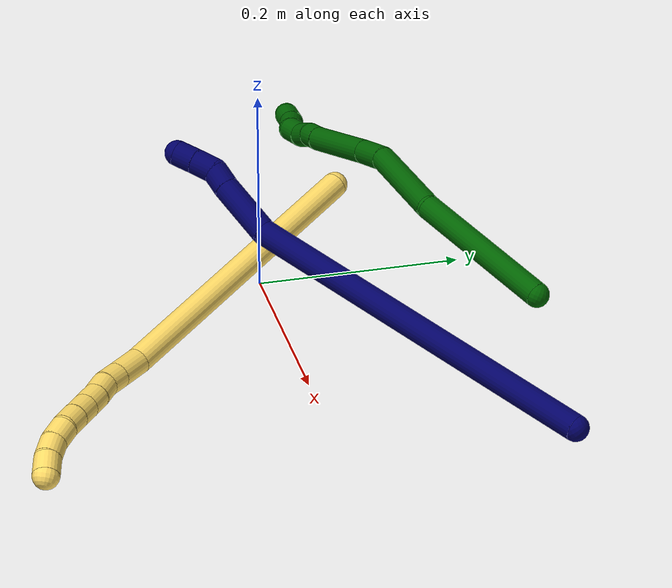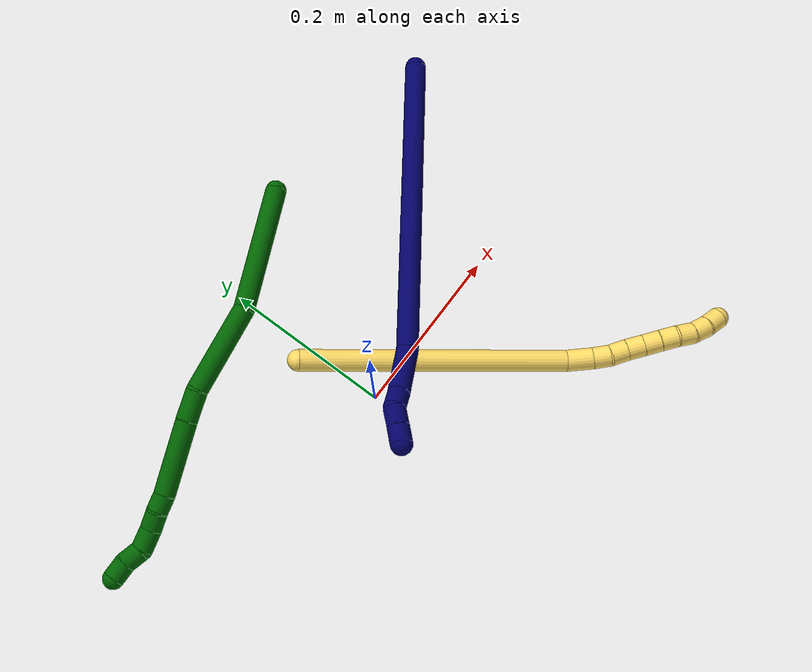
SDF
<sdf version="1.7">
 <world name="default">
  <model name="photoneo_s_sensor">
   <static>1</static>
   <pose>0 0 2 1.57079 1.57079 3.14159</pose>
   <link name="link">
    <inertial><mass>0.1</mass></inertial>
    <sensor name="sensor" type="depth">
     <update_rate>30</update_rate>
     <camera>
      <horizontal_fov>1.22</horizontal_fov>
      <image><width>1920</width><height>1200</height><format>B8G8R8</format></image>
      <clip><near>0.1</near><far>4</far></clip>
      <depth_camera><output>points</output></depth_camera>
     </camera>
     <plugin name="camera_plugin" filename="libgazebo_ros_depth_camera.so">
      <baseline>0.2</baseline>
      <alwaysOn>1</alwaysOn>
      <updateRate>0.0</updateRate>
      <cameraName>camera_ir</cameraName>
      <imageTopicName>/camera/color/image_raw</imageTopicName>
      <cameraInfoTopicName>/camera/color/camera_info</cameraInfoTopicName>
      <depthImageTopicName>/camera/depth/image_raw</depthImageTopicName>
      <depthImageCameraInfoTopicName>/camera/depth/camera_info</depthImageCameraInfoTopicName>
      <pointCloudTopicName>/camera/depth/points</pointCloudTopicName>
      <frameName>fr_optical</frameName>
      <pointCloudCutoff>0.1</pointCloudCutoff>
      <pointCloudCutoffMax>2.0</pointCloudCutoffMax>
      <distortionK1>0</distortionK1>
      <distortionK2>0</distortionK2>
      <distortionK3>0</distortionK3>
      <distortionT1>0</distortionT1>
      <distortionT2>0</distortionT2>
      <CxPrime>0</CxPrime>
      <Cx>0</Cx>
      <Cy>0</Cy>
      <focalLength>0</focalLength>
      <hackBaseline>0</hackBaseline>
     </plugin>
    </sensor>
   </link>
  </model>
  <model name="bin">
   <static>1</static>
   <link name="bottom">
    <collision name="collision-bottom">
     <pose>0 0 -0.01 0 -0 0</pose>
     <geometry><box><size>0.8 0.6 0.02</size></box></geometry>
     <surface>
      <friction><ode><mu>100</mu><mu2>100</mu2></ode></friction>
      <contact><collide_bitmask>65535</collide_bitmask></contact>
     </surface>
    </collision>
   </link>
   <link name="west_wall">
    <collision name="collision-west_wall">
     <pose>-0.41 0 0.1 0 -0 0</pose>
     <geometry><box><size>0.02 0.6 0.2</size></box></geometry>
     <surface>
      <friction><ode><mu>100</mu><mu2>100</mu2></ode></friction>
      <contact><collide_bitmask>65535</collide_bitmask></contact>
     </surface>
    </collision>
   </link>
   <link name="east_wall">
    <collision name="collision-east_wall">
     <pose>0.41 0 0.1 0 -0 0</pose>
     <geometry><box><size>0.02 0.6 0.2</size></box></geometry>
     <surface>
      <friction><ode><mu>100</mu><mu2>100</mu2></ode></friction>
      <contact><collide_bitmask>65535</collide_bitmask></contact>
     </surface>
    </collision>
   </link>
   <link name="south_wall">
    <collision name="collision-south_wall">
     <pose>0 -0.31 0.1 0 -0 0</pose>
     <geometry><box><size>0.8 0.02 0.2</size></box></geometry>
     <surface>
      <friction><ode><mu>100</mu><mu2>100</mu2></ode></friction>
      <contact><collide_bitmask>65535</collide_bitmask></contact>
     </surface>
    </collision>
   </link>
   <link name="north_wall">
    <collision name="collision-north_wall">
     <pose>0 0.31 0.1 0 -0 0</pose>
     <geometry><box><size>0.8 0.02 0.2</size></box></geometry>
     <surface>
      <friction><ode><mu>100</mu><mu2>100</mu2></ode></friction>
      <contact><collide_bitmask>65535</collide_bitmask></contact>
     </surface>
    </collision>
   </link>
  </model>
  <model name="5">
   <static>0</static>
   <link name="5">
    <collision name="collision-cylinder-e_1_1_4">
     <pose>0.079133 -0.057446 0.118859 0.450205 0.540003 0.126577</pose>
     <geometry><cylinder><radius>0.0125</radius><length>0.307829</length></cylinder></geometry>
     <surface>
      <friction><ode><mu>1.16</mu><mu2>1.16</mu2><slip1>0</slip1><slip2>0</slip2></ode></friction>
      <contact><ode><kp>1e+06</kp><kd>1</kd><max_vel>0</max_vel><min_depth>0.001</min_depth></ode></contact>
     </surface>
    </collision>
    <visual name="visual-cylinder-e_1_1_4">
     <pose>0.079133 -0.057446 0.118859 0.450205 0.540003 0.126577</pose>
     <geometry><cylinder><radius>0.0125</radius><length>0.307829</length></cylinder></geometry>
     <material><ambient>1 0.858824 0.4 1</ambient></material>
    </visual>
    <collision name="collision-cylinder-e_2_4_5">
     <pose>0.166171 -0.123229 0.248216 0.671216 0.532771 0.189785</pose>
     <geometry><cylinder><radius>0.0125</radius><length>0.031124</length></cylinder></geometry>
     <surface>
      <friction><ode><mu>1.16</mu><mu2>1.16</mu2><slip1>0</slip1><slip2>0</slip2></ode></friction>
      <contact><ode><kp>1e+06</kp><kd>1</kd><max_vel>0</max_vel><min_depth>0.001</min_depth></ode></contact>
     </surface>
    </collision>
    <visual name="visual-cylinder-e_2_4_5">
     <pose>0.166171 -0.123229 0.248216 0.671216 0.532771 0.189785</pose>
     <geometry><cylinder><radius>0.0125</radius><length>0.031124</length></cylinder></geometry>
     <material><ambient>1 0.858824 0.4 1</ambient></material>
    </visual>
    <collision name="collision-cylinder-e_3_5_6">
     <pose>0.178888 -0.137696 0.265244 0.753747 0.493048 0.198542</pose>
     <geometry><cylinder><radius>0.0125</radius><length>0.020336</length></cylinder></geometry>
     <surface>
      <friction><ode><mu>1.16</mu><mu2>1.16</mu2><slip1>0</slip1><slip2>0</slip2></ode></friction>
      <contact><ode><kp>1e+06</kp><kd>1</kd><max_vel>0</max_vel><min_depth>0.001</min_depth></ode></contact>
     </surface>
    </collision>
    <visual name="visual-cylinder-e_3_5_6">
     <pose>0.178888 -0.137696 0.265244 0.753747 0.493048 0.198542</pose>
     <geometry><cylinder><radius>0.0125</radius><length>0.020336</length></cylinder></geometry>
     <material><ambient>1 0.858824 0.4 1</ambient></material>
    </visual>
    <collision name="collision-cylinder-e_4_6_7">
     <pose>0.186516 -0.149939 0.279184 0.689855 0.28513 0.103053</pose>
     <geometry><cylinder><radius>0.0125</radius><length>0.020018</length></cylinder></geometry>
     <surface>
      <friction><ode><mu>1.16</mu><mu2>1.16</mu2><slip1>0</slip1><slip2>0</slip2></ode></friction>
      <contact><ode><kp>1e+06</kp><kd>1</kd><max_vel>0</max_vel><min_depth>0.001</min_depth></ode></contact>
     </surface>
    </collision>
    <visual name="visual-cylinder-e_4_6_7">
     <pose>0.186516 -0.149939 0.279184 0.689855 0.28513 0.103053</pose>
     <geometry><cylinder><radius>0.0125</radius><length>0.020018</length></cylinder></geometry>
     <material><ambient>1 0.858824 0.4 1</ambient></material>
    </visual>
    <collision name="collision-cylinder-e_5_7_8">
     <pose>0.193011 -0.162302 0.293719 0.719942 0.370254 0.140734</pose>
     <geometry><cylinder><radius>0.0125</radius><length>0.020336</length></cylinder></geometry>
     <surface>
      <friction><ode><mu>1.16</mu><mu2>1.16</mu2><slip1>0</slip1><slip2>0</slip2></ode></friction>
      <contact><ode><kp>1e+06</kp><kd>1</kd><max_vel>0</max_vel><min_depth>0.001</min_depth></ode></contact>
     </surface>
    </collision>
    <visual name="visual-cylinder-e_5_7_8">
     <pose>0.193011 -0.162302 0.293719 0.719942 0.370254 0.140734</pose>
     <geometry><cylinder><radius>0.0125</radius><length>0.020336</length></cylinder></geometry>
     <material><ambient>1 0.858824 0.4 1</ambient></material>
    </visual>
    <collision name="collision-cylinder-e_6_8_9">
     <pose>0.200346 -0.175038 0.307715 0.756788 0.369171 0.148183</pose>
     <geometry><cylinder><radius>0.0125</radius><length>0.02026</length></cylinder></geometry>
     <surface>
      <friction><ode><mu>1.16</mu><mu2>1.16</mu2><slip1>0</slip1><slip2>0</slip2></ode></friction>
      <contact><ode><kp>1e+06</kp><kd>1</kd><max_vel>0</max_vel><min_depth>0.001</min_depth></ode></contact>
     </surface>
    </collision>
    <visual name="visual-cylinder-e_6_8_9">
     <pose>0.200346 -0.175038 0.307715 0.756788 0.369171 0.148183</pose>
     <geometry><cylinder><radius>0.0125</radius><length>0.02026</length></cylinder></geometry>
     <material><ambient>1 0.858824 0.4 1</ambient></material>
    </visual>
    <collision name="collision-cylinder-e_7_9_10">
     <pose>0.207573 -0.187646 0.321642 0.714397 0.365203 0.137614</pose>
     <geometry><cylinder><radius>0.0125</radius><length>0.020005</length></cylinder></geometry>
     <surface>
      <friction><ode><mu>1.16</mu><mu2>1.16</mu2><slip1>0</slip1><slip2>0</slip2></ode></friction>
      <contact><ode><kp>1e+06</kp><kd>1</kd><max_vel>0</max_vel><min_depth>0.001</min_depth></ode></contact>
     </surface>
    </collision>
    <visual name="visual-cylinder-e_7_9_10">
     <pose>0.207573 -0.187646 0.321642 0.714397 0.365203 0.137614</pose>
     <geometry><cylinder><radius>0.0125</radius><length>0.020005</length></cylinder></geometry>
     <material><ambient>1 0.858824 0.4 1</ambient></material>
    </visual>
    <collision name="collision-cylinder-e_8_10_11">
     <pose>0.214535 -0.198191 0.337052 0.487164 0.344331 0.086374</pose>
     <geometry><cylinder><radius>0.0125</radius><length>0.020081</length></cylinder></geometry>
     <surface>
      <friction><ode><mu>1.16</mu><mu2>1.16</mu2><slip1>0</slip1><slip2>0</slip2></ode></friction>
      <contact><ode><kp>1e+06</kp><kd>1</kd><max_vel>0</max_vel><min_depth>0.001</min_depth></ode></contact>
     </surface>
    </collision>
    <visual name="visual-cylinder-e_8_10_11">
     <pose>0.214535 -0.198191 0.337052 0.487164 0.344331 0.086374</pose>
     <geometry><cylinder><radius>0.0125</radius><length>0.020081</length></cylinder></geometry>
     <material><ambient>1 0.858824 0.4 1</ambient></material>
    </visual>
    <collision name="collision-cylinder-e_9_11_12">
     <pose>0.219006 -0.207654 0.353976 0.531428 0.108364 0.029518</pose>
     <geometry><cylinder><radius>0.0125</radius><length>0.020004</length></cylinder></geometry>
     <surface>
      <friction><ode><mu>1.16</mu><mu2>1.16</mu2><slip1>0</slip1><slip2>0</slip2></ode></friction>
      <contact><ode><kp>1e+06</kp><kd>1</kd><max_vel>0</max_vel><min_depth>0.001</min_depth></ode></contact>
     </surface>
    </collision>
    <visual name="visual-cylinder-e_9_11_12">
     <pose>0.219006 -0.207654 0.353976 0.531428 0.108364 0.029518</pose>
     <geometry><cylinder><radius>0.0125</radius><length>0.020004</length></cylinder></geometry>
     <material><ambient>1 0.858824 0.4 1</ambient></material>
    </visual>
    <collision name="collision-cylinder-e_10_12_2">
     <pose>0.219312 -0.217074 0.371507 0.454785 -0.077661 -0.017979</pose>
     <geometry><cylinder><radius>0.0125</radius><length>0.020006</length></cylinder></geometry>
     <surface>
      <friction><ode><mu>1.16</mu><mu2>1.16</mu2><slip1>0</slip1><slip2>0</slip2></ode></friction>
      <contact><ode><kp>1e+06</kp><kd>1</kd><max_vel>0</max_vel><min_depth>0.001</min_depth></ode></contact>
     </surface>
    </collision>
    <visual name="visual-cylinder-e_10_12_2">
     <pose>0.219312 -0.217074 0.371507 0.454785 -0.077661 -0.017979</pose>
     <geometry><cylinder><radius>0.0125</radius><length>0.020006</length></cylinder></geometry>
     <material><ambient>1 0.858824 0.4 1</ambient></material>
    </visual>
    <collision name="collision-sphere-2">
     <pose>0.218536 -0.221455 0.380466 0 -0 0</pose>
     <geometry><sphere><radius>0.0125</radius></sphere></geometry>
     <surface>
      <friction><ode><mu>1.16</mu><mu2>1.16</mu2><slip1>0</slip1><slip2>0</slip2></ode></friction>
      <contact><ode><kp>1e+06</kp><kd>1</kd><max_vel>0</max_vel><min_depth>0.001</min_depth></ode></contact>
     </surface>
    </collision>
    <visual name="visual-sphere-2">
     <pose>0.218536 -0.221455 0.380466 0 -0 0</pose>
     <geometry><sphere><radius>0.0125</radius></sphere></geometry>
     <material><ambient>1 0.858824 0.4 1</ambient></material>
    </visual>
    <collision name="collision-sphere-12">
     <pose>0.220088 -0.212693 0.362548 0 -0 0</pose>
     <geometry><sphere><radius>0.0125</radius></sphere></geometry>
     <surface>
      <friction><ode><mu>1.16</mu><mu2>1.16</mu2><slip1>0</slip1><slip2>0</slip2></ode></friction>
      <contact><ode><kp>1e+06</kp><kd>1</kd><max_vel>0</max_vel><min_depth>0.001</min_depth></ode></contact>
     </surface>
    </collision>
    <visual name="visual-sphere-12">
     <pose>0.220088 -0.212693 0.362548 0 -0 0</pose>
     <geometry><sphere><radius>0.0125</radius></sphere></geometry>
     <material><ambient>1 0.858824 0.4 1</ambient></material>
    </visual>
    <collision name="collision-sphere-11">
     <pose>0.217924 -0.202615 0.345404 0 -0 0</pose>
     <geometry><sphere><radius>0.0125</radius></sphere></geometry>
     <surface>
      <friction><ode><mu>1.16</mu><mu2>1.16</mu2><slip1>0</slip1><slip2>0</slip2></ode></friction>
      <contact><ode><kp>1e+06</kp><kd>1</kd><max_vel>0</max_vel><min_depth>0.001</min_depth></ode></contact>
     </surface>
    </collision>
    <visual name="visual-sphere-11">
     <pose>0.217924 -0.202615 0.345404 0 -0 0</pose>
     <geometry><sphere><radius>0.0125</radius></sphere></geometry>
     <material><ambient>1 0.858824 0.4 1</ambient></material>
    </visual>
    <collision name="collision-sphere-10">
     <pose>0.211145 -0.193767 0.3287 0 -0 0</pose>
     <geometry><sphere><radius>0.0125</radius></sphere></geometry>
     <surface>
      <friction><ode><mu>1.16</mu><mu2>1.16</mu2><slip1>0</slip1><slip2>0</slip2></ode></friction>
      <contact><ode><kp>1e+06</kp><kd>1</kd><max_vel>0</max_vel><min_depth>0.001</min_depth></ode></contact>
     </surface>
    </collision>
    <visual name="visual-sphere-10">
     <pose>0.211145 -0.193767 0.3287 0 -0 0</pose>
     <geometry><sphere><radius>0.0125</radius></sphere></geometry>
     <material><ambient>1 0.858824 0.4 1</ambient></material>
    </visual>
    <collision name="collision-sphere-9">
     <pose>0.204001 -0.181524 0.314583 0 -0 0</pose>
     <geometry><sphere><radius>0.0125</radius></sphere></geometry>
     <surface>
      <friction><ode><mu>1.16</mu><mu2>1.16</mu2><slip1>0</slip1><slip2>0</slip2></ode></friction>
      <contact><ode><kp>1e+06</kp><kd>1</kd><max_vel>0</max_vel><min_depth>0.001</min_depth></ode></contact>
     </surface>
    </collision>
    <visual name="visual-sphere-9">
     <pose>0.204001 -0.181524 0.314583 0 -0 0</pose>
     <geometry><sphere><radius>0.0125</radius></sphere></geometry>
     <material><ambient>1 0.858824 0.4 1</ambient></material>
    </visual>
    <collision name="collision-sphere-4">
     <pose>0.158267 -0.114891 0.237719 0 -0 0</pose>
     <geometry><sphere><radius>0.0125</radius></sphere></geometry>
     <surface>
      <friction><ode><mu>1.16</mu><mu2>1.16</mu2><slip1>0</slip1><slip2>0</slip2></ode></friction>
      <contact><ode><kp>1e+06</kp><kd>1</kd><max_vel>0</max_vel><min_depth>0.001</min_depth></ode></contact>
     </surface>
    </collision>
    <visual name="visual-sphere-4">
     <pose>0.158267 -0.114891 0.237719 0 -0 0</pose>
     <geometry><sphere><radius>0.0125</radius></sphere></geometry>
     <material><ambient>1 0.858824 0.4 1</ambient></material>
    </visual>
    <collision name="collision-sphere-1">
     <geometry><sphere><radius>0.0125</radius></sphere></geometry>
     <surface>
      <friction><ode><mu>1.16</mu><mu2>1.16</mu2><slip1>0</slip1><slip2>0</slip2></ode></friction>
      <contact><ode><kp>1e+06</kp><kd>1</kd><max_vel>0</max_vel><min_depth>0.001</min_depth></ode></contact>
     </surface>
    </collision>
    <visual name="visual-sphere-1">
     <geometry><sphere><radius>0.0125</radius></sphere></geometry>
     <material><ambient>1 0.858824 0.4 1</ambient></material>
    </visual>
    <collision name="collision-sphere-8">
     <pose>0.19669 -0.168552 0.300846 0 -0 0</pose>
     <geometry><sphere><radius>0.0125</radius></sphere></geometry>
     <surface>
      <friction><ode><mu>1.16</mu><mu2>1.16</mu2><slip1>0</slip1><slip2>0</slip2></ode></friction>
      <contact><ode><kp>1e+06</kp><kd>1</kd><max_vel>0</max_vel><min_depth>0.001</min_depth></ode></contact>
     </surface>
    </collision>
    <visual name="visual-sphere-8">
     <pose>0.19669 -0.168552 0.300846 0 -0 0</pose>
     <geometry><sphere><radius>0.0125</radius></sphere></geometry>
     <material><ambient>1 0.858824 0.4 1</ambient></material>
    </visual>
    <collision name="collision-sphere-5">
     <pose>0.174075 -0.131566 0.258714 0 -0 0</pose>
     <geometry><sphere><radius>0.0125</radius></sphere></geometry>
     <surface>
      <friction><ode><mu>1.16</mu><mu2>1.16</mu2><slip1>0</slip1><slip2>0</slip2></ode></friction>
      <contact><ode><kp>1e+06</kp><kd>1</kd><max_vel>0</max_vel><min_depth>0.001</min_depth></ode></contact>
     </surface>
    </collision>
    <visual name="visual-sphere-5">
     <pose>0.174075 -0.131566 0.258714 0 -0 0</pose>
     <geometry><sphere><radius>0.0125</radius></sphere></geometry>
     <material><ambient>1 0.858824 0.4 1</ambient></material>
    </visual>
    <collision name="collision-sphere-6">
     <pose>0.183701 -0.143826 0.271775 0 -0 0</pose>
     <geometry><sphere><radius>0.0125</radius></sphere></geometry>
     <surface>
      <friction><ode><mu>1.16</mu><mu2>1.16</mu2><slip1>0</slip1><slip2>0</slip2></ode></friction>
      <contact><ode><kp>1e+06</kp><kd>1</kd><max_vel>0</max_vel><min_depth>0.001</min_depth></ode></contact>
     </surface>
    </collision>
    <visual name="visual-sphere-6">
     <pose>0.183701 -0.143826 0.271775 0 -0 0</pose>
     <geometry><sphere><radius>0.0125</radius></sphere></geometry>
     <material><ambient>1 0.858824 0.4 1</ambient></material>
    </visual>
    <collision name="collision-sphere-7">
     <pose>0.189332 -0.156052 0.286592 0 -0 0</pose>
     <geometry><sphere><radius>0.0125</radius></sphere></geometry>
     <surface>
      <friction><ode><mu>1.16</mu><mu2>1.16</mu2><slip1>0</slip1><slip2>0</slip2></ode></friction>
      <contact><ode><kp>1e+06</kp><kd>1</kd><max_vel>0</max_vel><min_depth>0.001</min_depth></ode></contact>
     </surface>
    </collision>
    <visual name="visual-sphere-7">
     <pose>0.189332 -0.156052 0.286592 0 -0 0</pose>
     <geometry><sphere><radius>0.0125</radius></sphere></geometry>
     <material><ambient>1 0.858824 0.4 1</ambient></material>
    </visual>
    <inertial>
     <pose>0.124233 -0.100796 0.190441 0 -0 0</pose>
     <mass>0.5</mass>
     <inertia>
      <ixx>0.002376</ixx>
      <ixy>0</ixy>
      <ixz>0</ixz>
      <iyy>0.002512</iyy>
      <iyz>0</iyz>
      <izz>-0.000311</izz>
     </inertia>
    </inertial>
   </link>
   <pose>-0.028409 0.082571 0.084 -2.3519 -0.168263 -1.85982</pose>
  </model>
  <model name="6">
   <static>0</static>
   <link name="6">
    <collision name="collision-cylinder-e_1_1_4">
     <pose>-0.071857 -0.032063 -0.013368 1.96581 -1.12049 -1.51019</pose>
     <geometry><cylinder><radius>0.0125</radius><length>0.159627</length></cylinder></geometry>
     <surface>
      <friction><ode><mu>1.16</mu><mu2>1.16</mu2><slip1>0</slip1><slip2>0</slip2></ode></friction>
      <contact><ode><kp>1e+06</kp><kd>1</kd><max_vel>0</max_vel><min_depth>0.001</min_depth></ode></contact>
     </surface>
    </collision>
    <visual name="visual-cylinder-e_1_1_4">
     <pose>-0.071857 -0.032063 -0.013368 1.96581 -1.12049 -1.51019</pose>
     <geometry><cylinder><radius>0.0125</radius><length>0.159627</length></cylinder></geometry>
     <material><ambient>0 0.392157 0.003922 1</ambient></material>
    </visual>
    <collision name="collision-cylinder-e_2_4_5">
     <pose>-0.181893 -0.100439 -0.036314 1.82868 -0.793644 -0.996318</pose>
     <geometry><cylinder><radius>0.0125</radius><length>0.107107</length></cylinder></geometry>
     <surface>
      <friction><ode><mu>1.16</mu><mu2>1.16</mu2><slip1>0</slip1><slip2>0</slip2></ode></friction>
      <contact><ode><kp>1e+06</kp><kd>1</kd><max_vel>0</max_vel><min_depth>0.001</min_depth></ode></contact>
     </surface>
    </collision>
    <visual name="visual-cylinder-e_2_4_5">
     <pose>-0.181893 -0.100439 -0.036314 1.82868 -0.793644 -0.996318</pose>
     <geometry><cylinder><radius>0.0125</radius><length>0.107107</length></cylinder></geometry>
     <material><ambient>0 0.392157 0.003922 1</ambient></material>
    </visual>
    <collision name="collision-cylinder-e_3_5_6">
     <pose>-0.232954 -0.148867 -0.044067 1.42136 -0.810417 -0.707348</pose>
     <geometry><cylinder><radius>0.0125</radius><length>0.035556</length></cylinder></geometry>
     <surface>
      <friction><ode><mu>1.16</mu><mu2>1.16</mu2><slip1>0</slip1><slip2>0</slip2></ode></friction>
      <contact><ode><kp>1e+06</kp><kd>1</kd><max_vel>0</max_vel><min_depth>0.001</min_depth></ode></contact>
     </surface>
    </collision>
    <visual name="visual-cylinder-e_3_5_6">
     <pose>-0.232954 -0.148867 -0.044067 1.42136 -0.810417 -0.707348</pose>
     <geometry><cylinder><radius>0.0125</radius><length>0.035556</length></cylinder></geometry>
     <material><ambient>0 0.392157 0.003922 1</ambient></material>
    </visual>
    <collision name="collision-cylinder-e_4_6_7">
     <pose>-0.277246 -0.189688 -0.036268 1.36556 -0.819809 -0.679365</pose>
     <geometry><cylinder><radius>0.0125</radius><length>0.085938</length></cylinder></geometry>
     <surface>
      <friction><ode><mu>1.16</mu><mu2>1.16</mu2><slip1>0</slip1><slip2>0</slip2></ode></friction>
      <contact><ode><kp>1e+06</kp><kd>1</kd><max_vel>0</max_vel><min_depth>0.001</min_depth></ode></contact>
     </surface>
    </collision>
    <visual name="visual-cylinder-e_4_6_7">
     <pose>-0.277246 -0.189688 -0.036268 1.36556 -0.819809 -0.679365</pose>
     <geometry><cylinder><radius>0.0125</radius><length>0.085938</length></cylinder></geometry>
     <material><ambient>0 0.392157 0.003922 1</ambient></material>
    </visual>
    <collision name="collision-cylinder-e_5_7_8">
     <pose>-0.315477 -0.225825 -0.029839 1.50982 -0.741598 -0.701309</pose>
     <geometry><cylinder><radius>0.0125</radius><length>0.020194</length></cylinder></geometry>
     <surface>
      <friction><ode><mu>1.16</mu><mu2>1.16</mu2><slip1>0</slip1><slip2>0</slip2></ode></friction>
      <contact><ode><kp>1e+06</kp><kd>1</kd><max_vel>0</max_vel><min_depth>0.001</min_depth></ode></contact>
     </surface>
    </collision>
    <visual name="visual-cylinder-e_5_7_8">
     <pose>-0.315477 -0.225825 -0.029839 1.50982 -0.741598 -0.701309</pose>
     <geometry><cylinder><radius>0.0125</radius><length>0.020194</length></cylinder></geometry>
     <material><ambient>0 0.392157 0.003922 1</ambient></material>
    </visual>
    <collision name="collision-cylinder-e_6_8_9">
     <pose>-0.328667 -0.241561 -0.026596 1.24677 -0.62866 -0.459279</pose>
     <geometry><cylinder><radius>0.0125</radius><length>0.021661</length></cylinder></geometry>
     <surface>
      <friction><ode><mu>1.16</mu><mu2>1.16</mu2><slip1>0</slip1><slip2>0</slip2></ode></friction>
      <contact><ode><kp>1e+06</kp><kd>1</kd><max_vel>0</max_vel><min_depth>0.001</min_depth></ode></contact>
     </surface>
    </collision>
    <visual name="visual-cylinder-e_6_8_9">
     <pose>-0.328667 -0.241561 -0.026596 1.24677 -0.62866 -0.459279</pose>
     <geometry><cylinder><radius>0.0125</radius><length>0.021661</length></cylinder></geometry>
     <material><ambient>0 0.392157 0.003922 1</ambient></material>
    </visual>
    <collision name="collision-cylinder-e_7_9_10">
     <pose>-0.343846 -0.259006 -0.023609 1.54922 -0.76687 -0.75201</pose>
     <geometry><cylinder><radius>0.0125</radius><length>0.025394</length></cylinder></geometry>
     <surface>
      <friction><ode><mu>1.16</mu><mu2>1.16</mu2><slip1>0</slip1><slip2>0</slip2></ode></friction>
      <contact><ode><kp>1e+06</kp><kd>1</kd><max_vel>0</max_vel><min_depth>0.001</min_depth></ode></contact>
     </surface>
    </collision>
    <visual name="visual-cylinder-e_7_9_10">
     <pose>-0.343846 -0.259006 -0.023609 1.54922 -0.76687 -0.75201</pose>
     <geometry><cylinder><radius>0.0125</radius><length>0.025394</length></cylinder></geometry>
     <material><ambient>0 0.392157 0.003922 1</ambient></material>
    </visual>
    <collision name="collision-cylinder-e_8_10_11">
     <pose>-0.356447 -0.278592 -0.026259 1.83684 -0.336835 -0.437986</pose>
     <geometry><cylinder><radius>0.0125</radius><length>0.022942</length></cylinder></geometry>
     <surface>
      <friction><ode><mu>1.16</mu><mu2>1.16</mu2><slip1>0</slip1><slip2>0</slip2></ode></friction>
      <contact><ode><kp>1e+06</kp><kd>1</kd><max_vel>0</max_vel><min_depth>0.001</min_depth></ode></contact>
     </surface>
    </collision>
    <visual name="visual-cylinder-e_8_10_11">
     <pose>-0.356447 -0.278592 -0.026259 1.83684 -0.336835 -0.437986</pose>
     <geometry><cylinder><radius>0.0125</radius><length>0.022942</length></cylinder></geometry>
     <material><ambient>0 0.392157 0.003922 1</ambient></material>
    </visual>
    <collision name="collision-cylinder-e_9_11_2">
     <pose>-0.366468 -0.297641 -0.031003 1.78788 -0.615442 -0.75333</pose>
     <geometry><cylinder><radius>0.0125</radius><length>0.021581</length></cylinder></geometry>
     <surface>
      <friction><ode><mu>1.16</mu><mu2>1.16</mu2><slip1>0</slip1><slip2>0</slip2></ode></friction>
      <contact><ode><kp>1e+06</kp><kd>1</kd><max_vel>0</max_vel><min_depth>0.001</min_depth></ode></contact>
     </surface>
    </collision>
    <visual name="visual-cylinder-e_9_11_2">
     <pose>-0.366468 -0.297641 -0.031003 1.78788 -0.615442 -0.75333</pose>
     <geometry><cylinder><radius>0.0125</radius><length>0.021581</length></cylinder></geometry>
     <material><ambient>0 0.392157 0.003922 1</ambient></material>
    </visual>
    <collision name="collision-sphere-2">
     <pose>-0.372698 -0.306245 -0.0329 0 -0 0</pose>
     <geometry><sphere><radius>0.0125</radius></sphere></geometry>
     <surface>
      <friction><ode><mu>1.16</mu><mu2>1.16</mu2><slip1>0</slip1><slip2>0</slip2></ode></friction>
      <contact><ode><kp>1e+06</kp><kd>1</kd><max_vel>0</max_vel><min_depth>0.001</min_depth></ode></contact>
     </surface>
    </collision>
    <visual name="visual-sphere-2">
     <pose>-0.372698 -0.306245 -0.0329 0 -0 0</pose>
     <geometry><sphere><radius>0.0125</radius></sphere></geometry>
     <material><ambient>0 0.392157 0.003922 1</ambient></material>
    </visual>
    <collision name="collision-sphere-11">
     <pose>-0.360238 -0.289037 -0.029105 0 -0 0</pose>
     <geometry><sphere><radius>0.0125</radius></sphere></geometry>
     <surface>
      <friction><ode><mu>1.16</mu><mu2>1.16</mu2><slip1>0</slip1><slip2>0</slip2></ode></friction>
      <contact><ode><kp>1e+06</kp><kd>1</kd><max_vel>0</max_vel><min_depth>0.001</min_depth></ode></contact>
     </surface>
    </collision>
    <visual name="visual-sphere-11">
     <pose>-0.360238 -0.289037 -0.029105 0 -0 0</pose>
     <geometry><sphere><radius>0.0125</radius></sphere></geometry>
     <material><ambient>0 0.392157 0.003922 1</ambient></material>
    </visual>
    <collision name="collision-sphere-10">
     <pose>-0.352656 -0.268147 -0.023412 0 -0 0</pose>
     <geometry><sphere><radius>0.0125</radius></sphere></geometry>
     <surface>
      <friction><ode><mu>1.16</mu><mu2>1.16</mu2><slip1>0</slip1><slip2>0</slip2></ode></friction>
      <contact><ode><kp>1e+06</kp><kd>1</kd><max_vel>0</max_vel><min_depth>0.001</min_depth></ode></contact>
     </surface>
    </collision>
    <visual name="visual-sphere-10">
     <pose>-0.352656 -0.268147 -0.023412 0 -0 0</pose>
     <geometry><sphere><radius>0.0125</radius></sphere></geometry>
     <material><ambient>0 0.392157 0.003922 1</ambient></material>
    </visual>
    <collision name="collision-sphere-9">
     <pose>-0.335036 -0.249865 -0.023807 0 -0 0</pose>
     <geometry><sphere><radius>0.0125</radius></sphere></geometry>
     <surface>
      <friction><ode><mu>1.16</mu><mu2>1.16</mu2><slip1>0</slip1><slip2>0</slip2></ode></friction>
      <contact><ode><kp>1e+06</kp><kd>1</kd><max_vel>0</max_vel><min_depth>0.001</min_depth></ode></contact>
     </surface>
    </collision>
    <visual name="visual-sphere-9">
     <pose>-0.335036 -0.249865 -0.023807 0 -0 0</pose>
     <geometry><sphere><radius>0.0125</radius></sphere></geometry>
     <material><ambient>0 0.392157 0.003922 1</ambient></material>
    </visual>
    <collision name="collision-sphere-4">
     <pose>-0.143714 -0.064126 -0.026736 0 -0 0</pose>
     <geometry><sphere><radius>0.0125</radius></sphere></geometry>
     <surface>
      <friction><ode><mu>1.16</mu><mu2>1.16</mu2><slip1>0</slip1><slip2>0</slip2></ode></friction>
      <contact><ode><kp>1e+06</kp><kd>1</kd><max_vel>0</max_vel><min_depth>0.001</min_depth></ode></contact>
     </surface>
    </collision>
    <visual name="visual-sphere-4">
     <pose>-0.143714 -0.064126 -0.026736 0 -0 0</pose>
     <geometry><sphere><radius>0.0125</radius></sphere></geometry>
     <material><ambient>0 0.392157 0.003922 1</ambient></material>
    </visual>
    <collision name="collision-sphere-1">
     <geometry><sphere><radius>0.0125</radius></sphere></geometry>
     <surface>
      <friction><ode><mu>1.16</mu><mu2>1.16</mu2><slip1>0</slip1><slip2>0</slip2></ode></friction>
      <contact><ode><kp>1e+06</kp><kd>1</kd><max_vel>0</max_vel><min_depth>0.001</min_depth></ode></contact>
     </surface>
    </collision>
    <visual name="visual-sphere-1">
     <geometry><sphere><radius>0.0125</radius></sphere></geometry>
     <material><ambient>0 0.392157 0.003922 1</ambient></material>
    </visual>
    <collision name="collision-sphere-8">
     <pose>-0.322298 -0.233257 -0.029385 0 -0 0</pose>
     <geometry><sphere><radius>0.0125</radius></sphere></geometry>
     <surface>
      <friction><ode><mu>1.16</mu><mu2>1.16</mu2><slip1>0</slip1><slip2>0</slip2></ode></friction>
      <contact><ode><kp>1e+06</kp><kd>1</kd><max_vel>0</max_vel><min_depth>0.001</min_depth></ode></contact>
     </surface>
    </collision>
    <visual name="visual-sphere-8">
     <pose>-0.322298 -0.233257 -0.029385 0 -0 0</pose>
     <geometry><sphere><radius>0.0125</radius></sphere></geometry>
     <material><ambient>0 0.392157 0.003922 1</ambient></material>
    </visual>
    <collision name="collision-sphere-5">
     <pose>-0.220072 -0.136751 -0.045892 0 -0 0</pose>
     <geometry><sphere><radius>0.0125</radius></sphere></geometry>
     <surface>
      <friction><ode><mu>1.16</mu><mu2>1.16</mu2><slip1>0</slip1><slip2>0</slip2></ode></friction>
      <contact><ode><kp>1e+06</kp><kd>1</kd><max_vel>0</max_vel><min_depth>0.001</min_depth></ode></contact>
     </surface>
    </collision>
    <visual name="visual-sphere-5">
     <pose>-0.220072 -0.136751 -0.045892 0 -0 0</pose>
     <geometry><sphere><radius>0.0125</radius></sphere></geometry>
     <material><ambient>0 0.392157 0.003922 1</ambient></material>
    </visual>
    <collision name="collision-sphere-6">
     <pose>-0.245835 -0.160983 -0.042243 0 -0 0</pose>
     <geometry><sphere><radius>0.0125</radius></sphere></geometry>
     <surface>
      <friction><ode><mu>1.16</mu><mu2>1.16</mu2><slip1>0</slip1><slip2>0</slip2></ode></friction>
      <contact><ode><kp>1e+06</kp><kd>1</kd><max_vel>0</max_vel><min_depth>0.001</min_depth></ode></contact>
     </surface>
    </collision>
    <visual name="visual-sphere-6">
     <pose>-0.245835 -0.160983 -0.042243 0 -0 0</pose>
     <geometry><sphere><radius>0.0125</radius></sphere></geometry>
     <material><ambient>0 0.392157 0.003922 1</ambient></material>
    </visual>
    <collision name="collision-sphere-7">
     <pose>-0.308657 -0.218393 -0.030292 0 -0 0</pose>
     <geometry><sphere><radius>0.0125</radius></sphere></geometry>
     <surface>
      <friction><ode><mu>1.16</mu><mu2>1.16</mu2><slip1>0</slip1><slip2>0</slip2></ode></friction>
      <contact><ode><kp>1e+06</kp><kd>1</kd><max_vel>0</max_vel><min_depth>0.001</min_depth></ode></contact>
     </surface>
    </collision>
    <visual name="visual-sphere-7">
     <pose>-0.308657 -0.218393 -0.030292 0 -0 0</pose>
     <geometry><sphere><radius>0.0125</radius></sphere></geometry>
     <material><ambient>0 0.392157 0.003922 1</ambient></material>
    </visual>
    <inertial>
     <pose>-0.202739 -0.13331 -0.027513 0 -0 0</pose>
     <mass>0.5</mass>
     <inertia>
      <ixx>-0.000184</ixx>
      <ixy>0</ixy>
      <ixz>0</ixz>
      <iyy>9.8e-05</iyy>
      <iyz>0</iyz>
      <izz>0.000693</izz>
     </inertia>
    </inertial>
   </link>
   <pose>0.125261 0.242735 0.022366 2.64608 0.27682 0.911538</pose>
  </model>
  <model name="7">
   <static>0</static>
   <link name="7">
    <collision name="collision-cylinder-e_1_1_4">
     <pose>-0.152915 -0.015276 -0.1077 3.00069 -0.952484 -2.86969</pose>
     <geometry><cylinder><radius>0.0125</radius><length>0.375316</length></cylinder></geometry>
     <surface>
      <friction><ode><mu>1.16</mu><mu2>1.16</mu2><slip1>0</slip1><slip2>0</slip2></ode></friction>
      <contact><ode><kp>1e+06</kp><kd>1</kd><max_vel>0</max_vel><min_depth>0.001</min_depth></ode></contact>
     </surface>
    </collision>
    <visual name="visual-cylinder-e_1_1_4">
     <pose>-0.152915 -0.015276 -0.1077 3.00069 -0.952484 -2.86969</pose>
     <geometry><cylinder><radius>0.0125</radius><length>0.375316</length></cylinder></geometry>
     <material><ambient>0.003922 0 0.403922 1</ambient></material>
    </visual>
    <collision name="collision-cylinder-e_2_4_5">
     <pose>-0.33445 -0.033731 -0.224993 2.82156 -1.23135 -2.69297</pose>
     <geometry><cylinder><radius>0.0125</radius><length>0.060705</length></cylinder></geometry>
     <surface>
      <friction><ode><mu>1.16</mu><mu2>1.16</mu2><slip1>0</slip1><slip2>0</slip2></ode></friction>
      <contact><ode><kp>1e+06</kp><kd>1</kd><max_vel>0</max_vel><min_depth>0.001</min_depth></ode></contact>
     </surface>
    </collision>
    <visual name="visual-cylinder-e_2_4_5">
     <pose>-0.33445 -0.033731 -0.224993 2.82156 -1.23135 -2.69297</pose>
     <geometry><cylinder><radius>0.0125</radius><length>0.060705</length></cylinder></geometry>
     <material><ambient>0.003922 0 0.403922 1</ambient></material>
    </visual>
    <collision name="collision-cylinder-e_3_5_6">
     <pose>-0.373476 -0.037817 -0.23707 2.79154 -1.32194 -2.69441</pose>
     <geometry><cylinder><radius>0.0125</radius><length>0.021471</length></cylinder></geometry>
     <surface>
      <friction><ode><mu>1.16</mu><mu2>1.16</mu2><slip1>0</slip1><slip2>0</slip2></ode></friction>
      <contact><ode><kp>1e+06</kp><kd>1</kd><max_vel>0</max_vel><min_depth>0.001</min_depth></ode></contact>
     </surface>
    </collision>
    <visual name="visual-cylinder-e_3_5_6">
     <pose>-0.373476 -0.037817 -0.23707 2.79154 -1.32194 -2.69441</pose>
     <geometry><cylinder><radius>0.0125</radius><length>0.021471</length></cylinder></geometry>
     <material><ambient>0.003922 0 0.403922 1</ambient></material>
    </visual>
    <collision name="collision-cylinder-e_4_6_7">
     <pose>-0.392182 -0.042005 -0.246285 2.68812 -0.836891 -2.18449</pose>
     <geometry><cylinder><radius>0.0125</radius><length>0.02236</length></cylinder></geometry>
     <surface>
      <friction><ode><mu>1.16</mu><mu2>1.16</mu2><slip1>0</slip1><slip2>0</slip2></ode></friction>
      <contact><ode><kp>1e+06</kp><kd>1</kd><max_vel>0</max_vel><min_depth>0.001</min_depth></ode></contact>
     </surface>
    </collision>
    <visual name="visual-cylinder-e_4_6_7">
     <pose>-0.392182 -0.042005 -0.246285 2.68812 -0.836891 -2.18449</pose>
     <geometry><cylinder><radius>0.0125</radius><length>0.02236</length></cylinder></geometry>
     <material><ambient>0.003922 0 0.403922 1</ambient></material>
    </visual>
    <collision name="collision-cylinder-e_5_7_2">
     <pose>-0.407889 -0.047859 -0.259343 2.75521 -0.825803 -2.30161</pose>
     <geometry><cylinder><radius>0.0125</radius><length>0.020147</length></cylinder></geometry>
     <surface>
      <friction><ode><mu>1.16</mu><mu2>1.16</mu2><slip1>0</slip1><slip2>0</slip2></ode></friction>
      <contact><ode><kp>1e+06</kp><kd>1</kd><max_vel>0</max_vel><min_depth>0.001</min_depth></ode></contact>
     </surface>
    </collision>
    <visual name="visual-cylinder-e_5_7_2">
     <pose>-0.407889 -0.047859 -0.259343 2.75521 -0.825803 -2.30161</pose>
     <geometry><cylinder><radius>0.0125</radius><length>0.020147</length></cylinder></geometry>
     <material><ambient>0.003922 0 0.403922 1</ambient></material>
    </visual>
    <collision name="collision-sphere-2">
     <pose>-0.415294 -0.050432 -0.265669 0 -0 0</pose>
     <geometry><sphere><radius>0.0125</radius></sphere></geometry>
     <surface>
      <friction><ode><mu>1.16</mu><mu2>1.16</mu2><slip1>0</slip1><slip2>0</slip2></ode></friction>
      <contact><ode><kp>1e+06</kp><kd>1</kd><max_vel>0</max_vel><min_depth>0.001</min_depth></ode></contact>
     </surface>
    </collision>
    <visual name="visual-sphere-2">
     <pose>-0.415294 -0.050432 -0.265669 0 -0 0</pose>
     <geometry><sphere><radius>0.0125</radius></sphere></geometry>
     <material><ambient>0.003922 0 0.403922 1</ambient></material>
    </visual>
    <collision name="collision-sphere-7">
     <pose>-0.400484 -0.045285 -0.253017 0 -0 0</pose>
     <geometry><sphere><radius>0.0125</radius></sphere></geometry>
     <surface>
      <friction><ode><mu>1.16</mu><mu2>1.16</mu2><slip1>0</slip1><slip2>0</slip2></ode></friction>
      <contact><ode><kp>1e+06</kp><kd>1</kd><max_vel>0</max_vel><min_depth>0.001</min_depth></ode></contact>
     </surface>
    </collision>
    <visual name="visual-sphere-7">
     <pose>-0.400484 -0.045285 -0.253017 0 -0 0</pose>
     <geometry><sphere><radius>0.0125</radius></sphere></geometry>
     <material><ambient>0.003922 0 0.403922 1</ambient></material>
    </visual>
    <collision name="collision-sphere-6">
     <pose>-0.383881 -0.038724 -0.239554 0 -0 0</pose>
     <geometry><sphere><radius>0.0125</radius></sphere></geometry>
     <surface>
      <friction><ode><mu>1.16</mu><mu2>1.16</mu2><slip1>0</slip1><slip2>0</slip2></ode></friction>
      <contact><ode><kp>1e+06</kp><kd>1</kd><max_vel>0</max_vel><min_depth>0.001</min_depth></ode></contact>
     </surface>
    </collision>
    <visual name="visual-sphere-6">
     <pose>-0.383881 -0.038724 -0.239554 0 -0 0</pose>
     <geometry><sphere><radius>0.0125</radius></sphere></geometry>
     <material><ambient>0.003922 0 0.403922 1</ambient></material>
    </visual>
    <collision name="collision-sphere-5">
     <pose>-0.363071 -0.036911 -0.234587 0 -0 0</pose>
     <geometry><sphere><radius>0.0125</radius></sphere></geometry>
     <surface>
      <friction><ode><mu>1.16</mu><mu2>1.16</mu2><slip1>0</slip1><slip2>0</slip2></ode></friction>
      <contact><ode><kp>1e+06</kp><kd>1</kd><max_vel>0</max_vel><min_depth>0.001</min_depth></ode></contact>
     </surface>
    </collision>
    <visual name="visual-sphere-5">
     <pose>-0.363071 -0.036911 -0.234587 0 -0 0</pose>
     <geometry><sphere><radius>0.0125</radius></sphere></geometry>
     <material><ambient>0.003922 0 0.403922 1</ambient></material>
    </visual>
    <collision name="collision-sphere-1">
     <geometry><sphere><radius>0.0125</radius></sphere></geometry>
     <surface>
      <friction><ode><mu>1.16</mu><mu2>1.16</mu2><slip1>0</slip1><slip2>0</slip2></ode></friction>
      <contact><ode><kp>1e+06</kp><kd>1</kd><max_vel>0</max_vel><min_depth>0.001</min_depth></ode></contact>
     </surface>
    </collision>
    <visual name="visual-sphere-1">
     <geometry><sphere><radius>0.0125</radius></sphere></geometry>
     <material><ambient>0.003922 0 0.403922 1</ambient></material>
    </visual>
    <collision name="collision-sphere-4">
     <pose>-0.305829 -0.030552 -0.2154 0 -0 0</pose>
     <geometry><sphere><radius>0.0125</radius></sphere></geometry>
     <surface>
      <friction><ode><mu>1.16</mu><mu2>1.16</mu2><slip1>0</slip1><slip2>0</slip2></ode></friction>
      <contact><ode><kp>1e+06</kp><kd>1</kd><max_vel>0</max_vel><min_depth>0.001</min_depth></ode></contact>
     </surface>
    </collision>
    <visual name="visual-sphere-4">
     <pose>-0.305829 -0.030552 -0.2154 0 -0 0</pose>
     <geometry><sphere><radius>0.0125</radius></sphere></geometry>
     <material><ambient>0.003922 0 0.403922 1</ambient></material>
    </visual>
    <inertial>
     <pose>-0.205401 -0.020993 -0.139804 0 -0 0</pose>
     <mass>0.5</mass>
     <inertia>
      <ixx>-0.003202</ixx>
      <ixy>0</ixy>
      <ixz>0</ixz>
      <iyy>0.003679</iyy>
      <iyz>0</iyz>
      <izz>0.003968</izz>
     </inertia>
    </inertial>
   </link>
   <pose>0.353129 0.206789 0.014517 -0.72803 0.641203 0.152206</pose>
  </model>
 </world>
</sdf>
